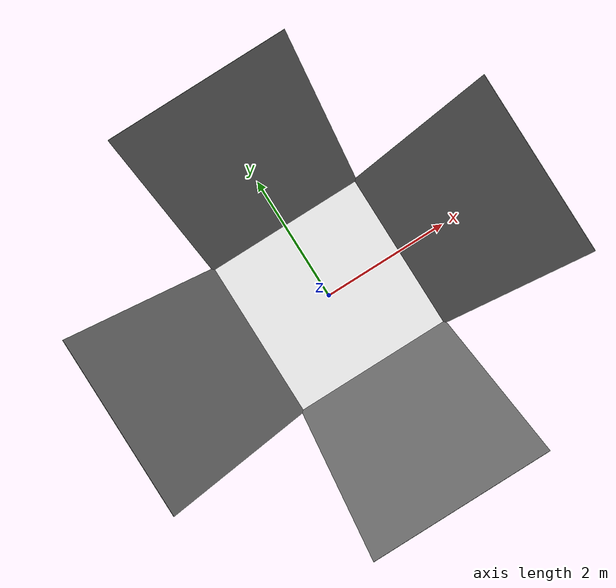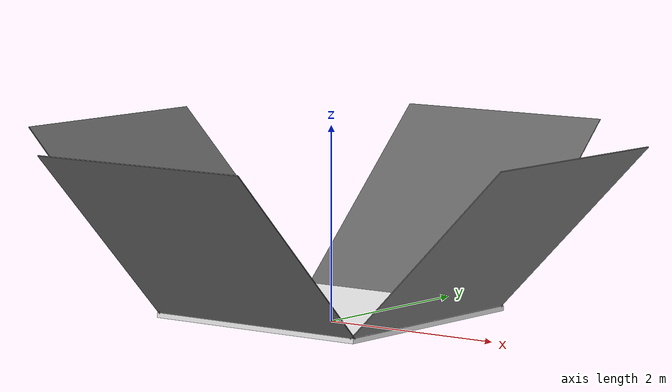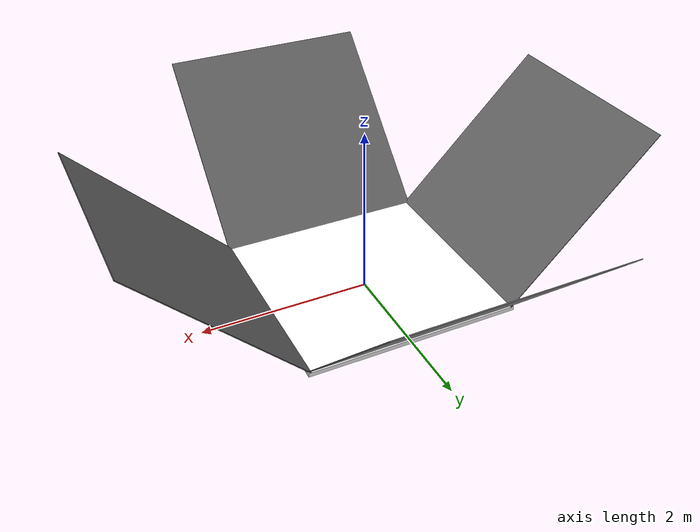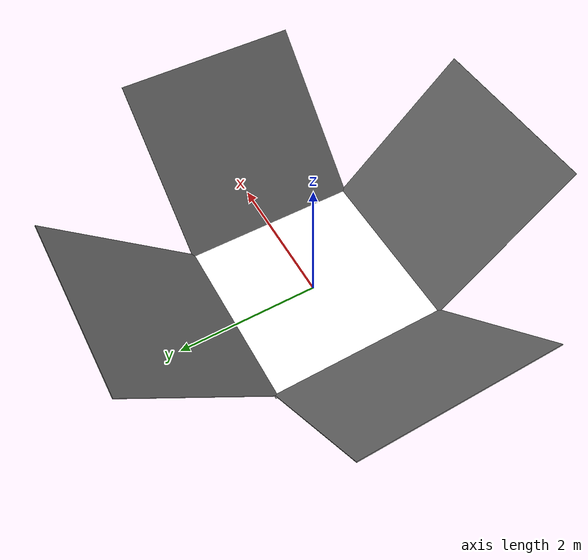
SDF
<?xml version="1.0" ?>
<sdf version="1.9">
  <model name="qr">
    <static>true</static>
    <link name="qr_link">
      <pose>0 0 0.1 0 0 0</pose>

      <visual name="qr_visual">
        <geometry>
          <box>
            <size>2.5 2.5 0.05</size>
          </box>
        </geometry>
	<material>
	    <diffuse>1.0 1.0 1.0</diffuse>
	    <specular>1.0 1.0 1.0</specular>
	    <pbr>
            <metal>
            <albedo_map>model://qr/materials/textures/qr_code.png</albedo_map>
            <roughness>1.0</roughness>
	    <metalness>0.0</metalness>
            </metal>
          </pbr>
       </material>
      </visual>

      <collision name="qr_collision">
        <geometry>
          <box>
            <size>1 1 0.01</size>
          </box>
        </geometry>
      </collision>
    </link>

     <!-- Ön Duvar (45°) -->
    <link name="wall_front">
      <pose degrees="true">2.1 0 1 0 45 0</pose>
      <visual name="front_wall_visual">
        <geometry>
          <box>
            <size>0.01 2.5 2.5</size>
          </box>
        </geometry>
        <material><ambient>0.4 0.4 0.4 1</ambient></material>
      </visual>
    </link>

    <!-- Arka Duvar (45°) -->
    <link name="wall_back">
      <pose degrees="true">-2.1 0 1 0 -45 0</pose>
      <visual name="back_wall_visual">
        <geometry>
          <box>
            <size> 0.01 2.5 2.5</size>
          </box>
        </geometry>
        <material><ambient>0.4 0.4 0.4 1</ambient></material>
      </visual>
    </link>

    <!-- Sol Duvar (45°) -->
    <link name="wall_left">
      <pose degrees="true">0 2.1 1 0 45 90</pose>
      <visual name="left_wall_visual">
        <geometry>
          <box>
            <size>0.01 2.5 2.5</size>
          </box>
        </geometry>
        <material><ambient>0.4 0.4 0.4 1</ambient></material>
      </visual>
    </link>

    <!-- Sağ Duvar (45°) -->
    <link name="wall_right">
      <pose degrees="true"> 0 -2.1 1 0 -45 90</pose>
      <visual name="right_wall_visual">
        <geometry>
          <box>
            <size>0.01 2.5 2.5</size>
          </box>
        </geometry>
        <material><ambient>0.4 0.4 0.4 1</ambient></material>
      </visual>
    </link>
  </model>
</sdf>
